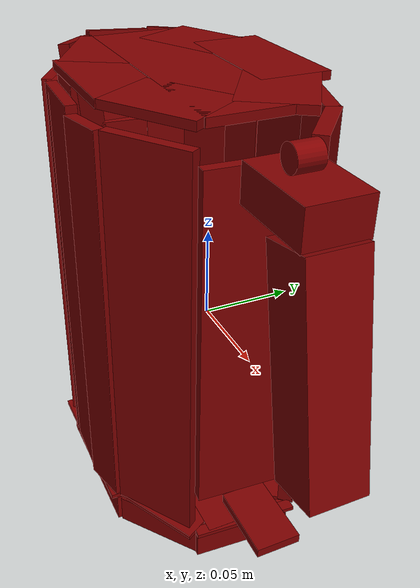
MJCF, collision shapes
<?xml version='1.0' encoding='UTF-8'?>
<mujoco model="model">
  <compiler angle="radian"/>
  <asset>
    <mesh file="visuals/Body001.obj" name="Body001_vis"/>
    <mesh file="visuals/Button001.obj" name="Button001_vis"/>
    <mesh file="visuals/Handle001.obj" name="Handle001_vis"/>
    <mesh file="visuals/Lever001.obj" name="Lever001_vis"/>
    <mesh file="visuals/Lid001.obj" name="Lid001_vis"/>
    <texture file="visuals/T_BC001.png" name="Body001_material" type="2d"/>
    <material name="Body001_material" rgba="1 1 1 1.0" texture="Body001_material" shininess="0.5" specular="0.3103448502657381"/>
    <texture file="visuals/T_BC001.png" name="Handle001_material" type="2d"/>
    <material name="Handle001_material" rgba="1 1 1 1.0" texture="Handle001_material" shininess="0.5" specular="0.3103448502657381"/>
    <texture file="visuals/T_BC001.png" name="Button001_material" type="2d"/>
    <material name="Button001_material" rgba="1 1 1 1.0" texture="Button001_material" shininess="0.5" specular="0.3103448502657381"/>
    <texture file="visuals/T_BC001.png" name="Lever001_material" type="2d"/>
    <material name="Lever001_material" rgba="1 1 1 1.0" texture="Lever001_material" shininess="0.5" specular="0.3103448502657381"/>
    <texture file="visuals/T_BC001.png" name="Lid001_material" type="2d"/>
    <material name="Lid001_material" rgba="1 1 1 1.0" texture="Lid001_material" shininess="0.5" specular="0.3103448502657381"/>
  </asset>
  <default>
    <default class="visual">
      <geom conaffinity="0" contype="0" group="1" type="mesh"/>
    </default>
    <default class="collision">
      <geom group="0" rgba="0.5 0 0 0.5"/>
    </default>
    <default class="spawn">
      <geom group="0" rgba="1 1 1 0.5" contype="0" conaffinity="0"/>
      <site group="0" rgba="1 1 1 0.5"/>
    </default>
    <default class="region">
      <geom group="1" conaffinity="0" contype="0" rgba="0 1 0 0"/>
    </default>
  </default>
  <worldbody>
    <body>
      <body name="object">
        <geom mesh="Body001_vis" type="mesh" solimp="0.998 0.998 0.001" solref="0.001 1" density="100" friction="0.95 0.3 0.1" class="visual" material="Body001_material"/>
        <geom class="collision" type="box" pos="-0.030715 0.039569 -0.121221" size="0.03901650384068489 0.022408217191696167 0.008684477768838406" quat="1.0 0.0 0.0 0.0"/>
        <geom class="collision" type="box" pos="-0.031872 -0.003328 -0.121221" size="0.08571099489927292 0.019334398210048676 0.008684562519192696" quat="1.0 0.0 0.0 0.0"/>
        <geom class="collision" type="box" pos="-0.033861 -0.042961 -0.121221" size="0.04398293420672417 0.019334398210048676 0.00868457555770874" quat="1.0 0.0 0.0 0.0"/>
        <geom class="collision" type="box" pos="0.053362 -0.001329 -0.119576" size="0.028108758851885796 0.0029802254866808653 0.010105718858540058" quat="0.7291593551635742 -0.0009773392230272293 -0.0009172676946036518 0.684342622756958"/>
        <geom class="collision" type="box" pos="0.022568 0.030089 -0.121221" size="0.025336695834994316 0.017643773928284645 0.008684477768838406" quat="0.9484087824821472 0.0 -0.0 -0.31705009937286377"/>
        <geom class="collision" type="box" pos="-0.087110 0.029916 -0.121221" size="0.025336695834994316 0.017643773928284645 0.008684477768838406" quat="0.948785662651062 0.0 0.0 0.31592050194740295"/>
        <geom class="collision" type="box" pos="-0.086568 -0.029680 -0.121221" size="0.025336695834994316 0.017643773928284645 0.008684477768838406" quat="0.9498584866523743 0.0 -0.0 -0.31268003582954407"/>
        <geom class="collision" type="box" pos="0.020672 -0.030861 -0.121221" size="0.025336695834994316 0.017643773928284645 0.008684477768838406" quat="0.9466313719749451 0.0 0.0 0.3223182260990143"/>
        <body name="Handle001">
          <joint axis="0.0 0.0 1.0" pos="0.000000 -0.000386 0.007892" limited="true" name="Handle001_joint" range="0.0 0.05" type="slide" damping="1" frictionloss="1" armature=".01" stiffness="0.05"/>
          <geom mesh="Handle001_vis" type="mesh" solimp="0.998 0.998 0.001" solref="0.001 1" density="100" friction="0.95 0.3 0.1" class="visual" material="Handle001_material"/>
          <geom class="collision" type="box" pos="-0.064763 -0.060341 0.005506" size="0.016860613599419594 0.0029781614430248737 0.1133871078491211" quat="0.9928849935531616 -0.0013308270135894418 0.00015959719894453883 -0.11906971782445908"/>
          <geom class="collision" type="box" pos="-0.111860 -0.032941 -0.017980" size="0.01901637203991413 0.003575999988242984 0.09021326154470444" quat="0.883335292339325 0.0 -0.0 -0.46874165534973145"/>
          <geom class="collision" type="box" pos="-0.122084 -0.001986 -0.017574" size="0.01544385589659214 0.003131394973024726 0.09061931818723679" quat="0.6766473650932312 0.0 -0.0 -0.7363072633743286"/>
          <geom class="collision" type="box" pos="-0.115199 0.027574 -0.017958" size="0.015443935990333557 0.0028711154591292143 0.09023608267307281" quat="0.5959713459014893 0.0 -0.0 -0.8030056953430176"/>
          <geom class="collision" type="box" pos="-0.096766 0.045781 0.005193" size="0.015700949355959892 0.003543086349964142 0.1133870780467987" quat="0.31641891598701477 0.0 -0.0 -0.948619544506073"/>
          <geom class="collision" type="box" pos="-0.038768 0.064284 0.005193" size="0.024412164464592934 0.0033870122861117125 0.11338985711336136" quat="1.0 0.0 0.0 0.0"/>
          <geom class="collision" type="box" pos="0.005307 0.059128 0.005193" size="0.020456334576010704 0.004069765564054251 0.1133870780467987" quat="0.15505169332027435 0.0 0.0 0.9879063367843628"/>
          <geom class="collision" type="box" pos="0.085776 0.000844 0.106415" size="0.02440115623176098 0.01627444103360176 0.0100940503180027" quat="1.0 0.0 0.0 0.0"/>
          <geom class="collision" type="box" pos="0.109832 -0.000036 0.036660" size="0.059129148721694946 0.015394015237689018 0.01478385366499424" quat="0.6377416849136353 -0.0 -0.7702503204345703 -0.0"/>
          <geom class="collision" type="box" pos="-0.117191 -0.028931 0.098642" size="0.015436122193932533 0.0035713675897568464 0.027253884822130203" quat="0.9309722185134888 0.049263618886470795 -0.05165199190378189 -0.3580445349216461"/>
          <geom class="collision" type="box" pos="-0.130979 -0.000959 0.098782" size="0.019227778539061546 0.003571367124095559 0.027253882959485054" quat="0.7098108530044556 0.02446887455880642 -0.06705302000045776 -0.7007665038108826"/>
          <geom class="collision" type="box" pos="-0.121317 0.030527 0.098979" size="0.015436122193932533 0.00357136782258749 0.027253884822130203" quat="0.4376830756664276 0.03939485549926758 -0.07372760027647018 -0.8952350616455078"/>
          <geom class="collision" type="box" pos="-0.034547 -0.064339 0.007954" size="0.02063596248626709 0.0029904686380177736 0.11505694687366486" quat="0.999804675579071 -0.001328105921857059 -0.0001808705274015665 -0.019719116389751434"/>
          <geom class="collision" type="box" pos="0.030171 -0.044511 0.005506" size="0.02424064837396145 0.0029781616758555174 0.1133871078491211" quat="0.9555900692939758 -0.001303919474594295 -0.00031043749186210334 0.2946961224079132"/>
          <geom class="collision" type="box" pos="0.053885 -0.001362 0.013773" size="0.028108760714530945 0.002980225021019578 0.09746107459068298" quat="0.7291593551635742 -0.0009773392230272293 -0.0009172676946036518 0.684342622756958"/>
          <geom class="collision" type="box" pos="-0.001892 -0.063090 0.005505" size="0.012946936301887035 0.00297816121019423 0.1133871078491211" quat="0.9928908348083496 -0.0012273651082068682 -0.0005386587581597269 0.11902088671922684"/>
          <geom class="collision" type="box" pos="-0.086878 -0.052757 0.005501" size="0.016860613599419594 0.0029781614430248737 0.1133871078491211" quat="0.9647367596626282 -0.0013398503651842475 -3.704998016473837e-05 -0.26321321725845337"/>
          <geom class="collision" type="box" pos="0.039903 0.040131 0.005193" size="0.020850282162427902 0.004069765564054251 0.1133870780467987" quat="0.35544705390930176 0.0 0.0 0.9346964359283447"/>
          <geom class="collision" type="box" pos="-0.074925 0.058125 0.005193" size="0.014276613481342793 0.003543086117133498 0.1133870780467987" quat="0.17603334784507751 0.0 -0.0 -0.9843841791152954"/>
          <geom class="collision" type="box" pos="-0.031559 0.042083 -0.108665" size="0.04139360785484314 0.023773247376084328 0.0012748128501698375" quat="1.0 0.0 0.0 0.0"/>
          <geom class="collision" type="box" pos="-0.034896 -0.045475 -0.108665" size="0.04666261747479439 0.020512307062745094 0.0012749126181006432" quat="1.0 0.0 0.0 0.0"/>
          <geom class="collision" type="box" pos="-0.032786 -0.003427 -0.108665" size="0.09093298763036728 0.02051232010126114 0.0012749024899676442" quat="1.0 0.0 0.0 0.0"/>
          <geom class="collision" type="box" pos="0.057641 -0.001307 -0.108565" size="0.029821302741765976 0.0031874869018793106 0.0011384485987946391" quat="0.7291593551635742 -0.0009773392230272293 -0.0009172676946036518 0.684342622756958"/>
          <geom class="collision" type="box" pos="0.024971 0.032026 -0.108665" size="0.026880349963903427 0.01871873252093792 0.0012748133158311248" quat="0.9484087824821472 0.0 -0.0 -0.31705009937286377"/>
          <geom class="collision" type="box" pos="-0.091389 0.031842 -0.108665" size="0.026880349963903427 0.01871873252093792 0.0012748128501698375" quat="0.948785662651062 0.0 0.0 0.31592050194740295"/>
          <geom class="collision" type="box" pos="-0.090814 -0.031385 -0.108665" size="0.026880349963903427 0.01871873252093792 0.0012748133158311248" quat="0.9498584866523743 0.0 -0.0 -0.31268003582954407"/>
          <geom class="collision" type="box" pos="0.024971 -0.032088 -0.108665" size="0.026880349963903427 0.01871873252093792 0.0012748133158311248" quat="0.9696411490440369 0.0 0.0 0.24453236162662506"/>
          <body name="Button001">
            <joint axis="0.0 0.0 -1.0" pos="0.083161 0.000000 0.123536" limited="true" name="Button001_joint" range="0.0 0.002" type="slide" damping="1" frictionloss="1" armature=".01" stiffness="0.5" springref="-0.5"/>
            <geom mesh="Button001_vis" type="mesh" solimp="0.998 0.998 0.001" solref="0.001 1" density="100" friction="0.95 0.3 0.1" class="visual" material="Button001_material"/>
            <geom class="collision" type="cylinder" pos="0.083287 -0.000118 0.123615" size="0.00667915865778923 0.006683458108454943" quat="0.7071067094802856 -0.7071068286895752 -0.0 0.0"/>
          </body>
          <body name="Lever001">
            <joint axis="0.0 0.0 -1.0" pos="0.059493 -0.001617 -0.090077" limited="true" name="Lever001_joint" range="0.0 0.012" type="slide" damping="1" frictionloss="1" armature=".01" stiffness="0.5" springref="-0.5"/>
            <geom mesh="Lever001_vis" type="mesh" solimp="0.998 0.998 0.001" solref="0.001 1" density="100" friction="0.95 0.3 0.1" class="visual" material="Lever001_material"/>
            <geom class="collision" type="box" pos="0.074428 -0.001635 -0.089827" size="0.020569611340761185 0.012460312806069851 0.0026040019001811743" quat="1.0 0.0 0.0 0.0"/>
          </body>
          <body name="Lid001">
            <joint axis="0.0 1.0 0.0" pos="0.050852 -0.000896 0.127181" limited="true" name="Lid001_joint" range="0.0 1.5707963267948966" type="hinge" damping="1" frictionloss="1" armature=".01" stiffness="0.05"/>
            <geom mesh="Lid001_vis" type="mesh" solimp="0.998 0.998 0.001" solref="0.001 1" density="100" friction="0.95 0.3 0.1" class="visual" material="Lid001_material"/>
            <geom class="collision" type="box" pos="-0.032359 -0.000354 0.127248" size="0.07628960907459259 0.02337011694908142 0.002351757138967514" quat="1.0 0.0 0.0 0.0"/>
            <geom class="collision" type="box" pos="-0.033369 0.043395 0.127248" size="0.03918682783842087 0.01974499598145485 0.002351757138967514" quat="1.0 0.0 0.0 0.0"/>
            <geom class="collision" type="box" pos="-0.033369 -0.041167 0.127248" size="0.03454253450036049 0.01702992059290409 0.0023517413064837456" quat="1.0 0.0 0.0 0.0"/>
            <geom class="collision" type="box" pos="0.016760 0.027302 0.127248" size="0.026741616427898407 0.019444305449724197 0.002351757138967514" quat="0.9584839940071106 0.0 -0.0 -0.2851462960243225"/>
            <geom class="collision" type="box" pos="-0.078864 0.028656 0.127248" size="0.026741618290543556 0.019444305449724197 0.002351757138967514" quat="0.9746506214141846 0.0 0.0 0.22373245656490326"/>
            <geom class="collision" type="box" pos="0.012967 -0.026876 0.127248" size="0.026741618290543556 0.019444305449724197 0.002351757138967514" quat="0.9592248201370239 0.0 0.0 0.28264427185058594"/>
            <geom class="collision" type="box" pos="-0.078864 -0.025792 0.127248" size="0.026741618290543556 0.019444305449724197 0.002351757138967514" quat="0.9656264781951904 0.0 -0.0 -0.2599337100982666"/>
          </body>
        </body>
        <geom class="region" name="reg_main" type="box" pos="0.0 0.0 0.0" size="0.133605 0.064526 0.129295"/>
      </body>
    </body>
  </worldbody>
  <actuator>
    <motor name="Handle001_joint_actuator" joint="Handle001_joint" gear="20"/>
    <motor name="Button001_joint_actuator" joint="Button001_joint" gear="0.5"/>
    <motor name="Lever001_joint_actuator" joint="Lever001_joint" gear="0.5"/>
    <motor name="Lid001_joint_actuator" joint="Lid001_joint" gear="5"/>
  </actuator>
</mujoco>
